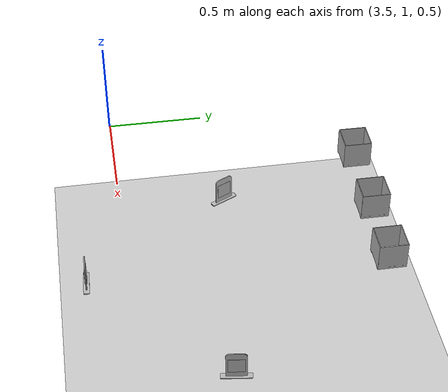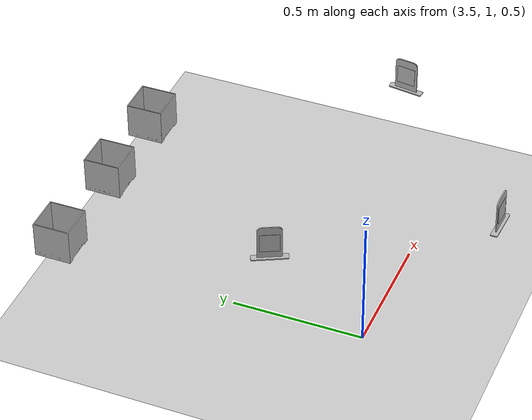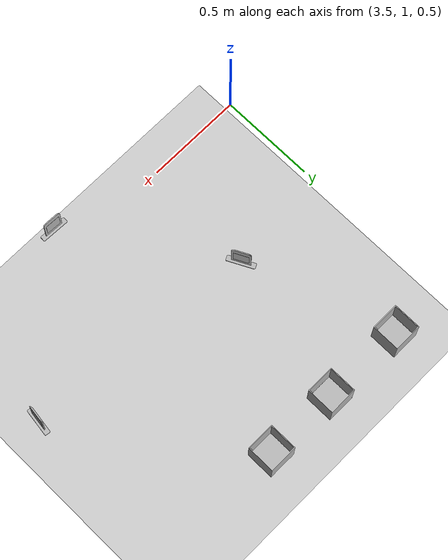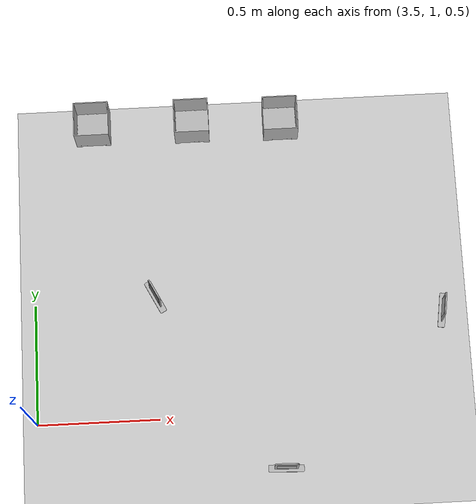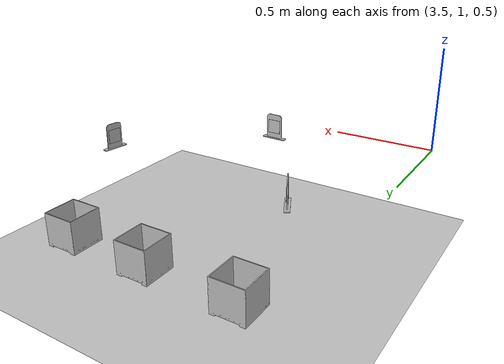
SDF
<sdf version="1.7">
 <world name="trc2k25_arena">
  <model name="ground_plane">
   <static>1</static>
   <link name="link">
    <collision name="collision">
     <geometry><plane><normal>0 0 1</normal><size>100 100</size></plane></geometry>
     <surface><friction><ode><mu>100</mu><mu2>50</mu2></ode></friction></surface>
    </collision>
    <visual name="visual">
     <cast_shadows>0</cast_shadows>
     <geometry><plane><normal>0 0 1</normal><size>100 100</size></plane></geometry>
     <material>
      <script><uri>file://media/materials/scripts/gazebo.material</uri><name>Gazebo/Grey</name></script>
     </material>
    </visual>
   </link>
  </model>
  <model name="pancarte_qr_code_zone2BeauSejour">
   <pose>5.2165 1.43795 0.345 0 -0 1.43089</pose>
   <model name="pancarte">
    <static>1</static>
    <link name="link">
     <collision name="collision">
      <pose>0 0.075 0 0 -0 0</pose>
      <geometry><box><size>0.15 0.15 0.03</size></box></geometry>
     </collision>
     <visual name="visual">
      <geometry>
       <mesh><scale>0.001 0.001 0.001</scale><uri>model://pancarte/meshes/PANCARTE_QR.stl</uri></mesh>
      </geometry>
     </visual>
    </link>
    <pose>8.8e-05 0.001115 -0.037644 1.55978 -0 0</pose>
   </model>
   <model name="qr_code_zone2BeauSejour">
    <static>1</static>
    <link name="qr_code_zone2BeauSejour_link">
     <pose>0 0 0.001 0 -0 1.5708</pose>
     <visual name="visual_qr_code_zone2BeauSejour">
      <cast_shadows>0</cast_shadows>
      <geometry><box><size>0.08 0.08 0.001</size></box></geometry>
      <material>
       <script>
        <uri>model://qr_code_zone2BeauSejour/materials/scripts</uri>
        <uri>model://qr_code_zone2BeauSejour/materials/textures</uri>
        <name>qr_code_zone2BeauSejour/qr_code_zone2BeauSejour</name>
       </script>
      </material>
     </visual>
    </link>
    <pose>-8.8e-05 -0.001115 0.037644 1.55615 -0 0</pose>
   </model>
   <model name="qr_code_zone2BeauSejour_0">
    <static>1</static>
    <link name="qr_code_zone2BeauSejour_link">
     <pose>0 0 0.001 0 -0 1.5708</pose>
     <visual name="visual_qr_code_zone2BeauSejour">
      <cast_shadows>0</cast_shadows>
      <geometry><box><size>0.08 0.08 0.001</size></box></geometry>
      <material>
       <script>
        <uri>model://qr_code_zone2BeauSejour/materials/scripts</uri>
        <uri>model://qr_code_zone2BeauSejour/materials/textures</uri>
        <name>qr_code_zone2BeauSejour/qr_code_zone2BeauSejour</name>
       </script>
      </material>
     </visual>
    </link>
    <pose>-8.8e-05 0.0072 0.037644 -1.58544 0.001593 3.14159</pose>
   </model>
   <static>0</static>
  </model>
  <model name="pancarte_qr_code_zone2GDIZ">
   <pose>4.50929 0.795201 0.345 -0 -0 -0.038272</pose>
   <model name="pancarte">
    <static>1</static>
    <link name="link">
     <collision name="collision">
      <pose>0 0.075 0 0 -0 0</pose>
      <geometry><box><size>0.15 0.15 0.03</size></box></geometry>
     </collision>
     <visual name="visual">
      <geometry>
       <mesh><scale>0.001 0.001 0.001</scale><uri>model://pancarte/meshes/PANCARTE_QR.stl</uri></mesh>
      </geometry>
     </visual>
    </link>
    <pose>8.8e-05 0.001115 -0.037644 1.55978 -0 0</pose>
   </model>
   <model name="qr_code_zone2GDIZ">
    <static>1</static>
    <link name="qr_code_zone2GDIZ_link">
     <pose>0 0 0.001 0 -0 1.5708</pose>
     <visual name="visual_qr_code_zone2GDIZ">
      <cast_shadows>0</cast_shadows>
      <geometry><box><size>0.08 0.08 0.001</size></box></geometry>
      <material>
       <script>
        <uri>model://qr_code_zone2GDIZ/materials/scripts</uri>
        <uri>model://qr_code_zone2GDIZ/materials/textures</uri>
        <name>qr_code_zone2GDIZ/qr_code_zone2GDIZ</name>
       </script>
      </material>
     </visual>
    </link>
    <pose>-8.8e-05 -0.001115 0.037644 1.55615 -0 0</pose>
   </model>
   <model name="qr_code_zone2GDIZ_0">
    <static>1</static>
    <link name="qr_code_zone2GDIZ_link">
     <pose>0 0 0.001 0 -0 1.5708</pose>
     <visual name="visual_qr_code_zone2GDIZ">
      <cast_shadows>0</cast_shadows>
      <geometry><box><size>0.08 0.08 0.001</size></box></geometry>
      <material>
       <script>
        <uri>model://qr_code_zone2GDIZ/materials/scripts</uri>
        <uri>model://qr_code_zone2GDIZ/materials/textures</uri>
        <name>qr_code_zone2GDIZ/qr_code_zone2GDIZ</name>
       </script>
      </material>
     </visual>
    </link>
    <pose>-8.8e-05 0.0072 0.037644 -1.58544 0.001593 3.14159</pose>
   </model>
   <static>0</static>
  </model>
  <model name="pancarte_qr_code_zone2Missebo">
   <pose>3.98906 1.55858 0.345 -0 -0 -1.1005</pose>
   <model name="pancarte">
    <static>1</static>
    <link name="link">
     <collision name="collision">
      <pose>0 0.075 0 0 -0 0</pose>
      <geometry><box><size>0.15 0.15 0.03</size></box></geometry>
     </collision>
     <visual name="visual">
      <geometry>
       <mesh><scale>0.001 0.001 0.001</scale><uri>model://pancarte/meshes/PANCARTE_QR.stl</uri></mesh>
      </geometry>
     </visual>
    </link>
    <pose>8.8e-05 0.001115 -0.037644 1.55978 -0 0</pose>
   </model>
   <model name="qr_code_zone2Missebo">
    <static>1</static>
    <link name="qr_code_zone2Missebo_link">
     <pose>0 0 0.001 0 -0 1.5708</pose>
     <visual name="visual_qr_code_zone2Missebo">
      <cast_shadows>0</cast_shadows>
      <geometry><box><size>0.08 0.08 0.001</size></box></geometry>
      <material>
       <script>
        <uri>model://qr_code_zone2Missebo/materials/scripts</uri>
        <uri>model://qr_code_zone2Missebo/materials/textures</uri>
        <name>qr_code_zone2Missebo/qr_code_zone2Missebo</name>
       </script>
      </material>
     </visual>
    </link>
    <pose>-8.8e-05 -0.001115 0.037644 1.55615 -0 0</pose>
   </model>
   <model name="qr_code_zone2Missebo_0">
    <static>1</static>
    <link name="qr_code_zone2Missebo_link">
     <pose>0 0 0.001 0 -0 1.5708</pose>
     <visual name="visual_qr_code_zone2Missebo">
      <cast_shadows>0</cast_shadows>
      <geometry><box><size>0.08 0.08 0.001</size></box></geometry>
      <material>
       <script>
        <uri>model://qr_code_zone2Missebo/materials/scripts</uri>
        <uri>model://qr_code_zone2Missebo/materials/textures</uri>
        <name>qr_code_zone2Missebo/qr_code_zone2Missebo</name>
       </script>
      </material>
     </visual>
    </link>
    <pose>-8.8e-05 0.0072 0.037644 -1.58544 0.001593 3.14159</pose>
   </model>
   <static>0</static>
  </model>
  <model name="corbeille_2">
   <static>1</static>
   <pose>4.56639 2.31737 0.305 0 -0 0</pose>
   <link name="link">
    <collision name="collision">
     <pose>0 0 0.075 0 -0 0</pose>
     <geometry><box><size>0.15 0.15 0.15</size></box></geometry>
    </collision>
    <visual name="visual">
     <pose>0 0 0.01 1.56319 -0 0</pose>
     <geometry>
      <mesh><scale>0.001 0.001 0.001</scale><uri>model://corbeille/meshes/CORBEILLE.stl</uri></mesh>
     </geometry>
    </visual>
   </link>
  </model>
  <model name="corbeille_3">
   <static>1</static>
   <pose>4.17914 2.32455 0.305 0 -0 0</pose>
   <link name="link">
    <collision name="collision">
     <pose>0 0 0.075 0 -0 0</pose>
     <geometry><box><size>0.15 0.15 0.15</size></box></geometry>
    </collision>
    <visual name="visual">
     <pose>0 0 0.01 1.56319 -0 0</pose>
     <geometry>
      <mesh><scale>0.001 0.001 0.001</scale><uri>model://corbeille/meshes/CORBEILLE.stl</uri></mesh>
     </geometry>
    </visual>
   </link>
  </model>
  <model name="corbeille_4">
   <static>1</static>
   <pose>3.74573 2.33043 0.305 0 -0 0</pose>
   <link name="link">
    <collision name="collision">
     <pose>0 0 0.075 0 -0 0</pose>
     <geometry><box><size>0.15 0.15 0.15</size></box></geometry>
    </collision>
    <visual name="visual">
     <pose>0 0 0.01 1.56319 -0 0</pose>
     <geometry>
      <mesh><scale>0.001 0.001 0.001</scale><uri>model://corbeille/meshes/CORBEILLE.stl</uri></mesh>
     </geometry>
    </visual>
   </link>
  </model>
 </world>
</sdf>
